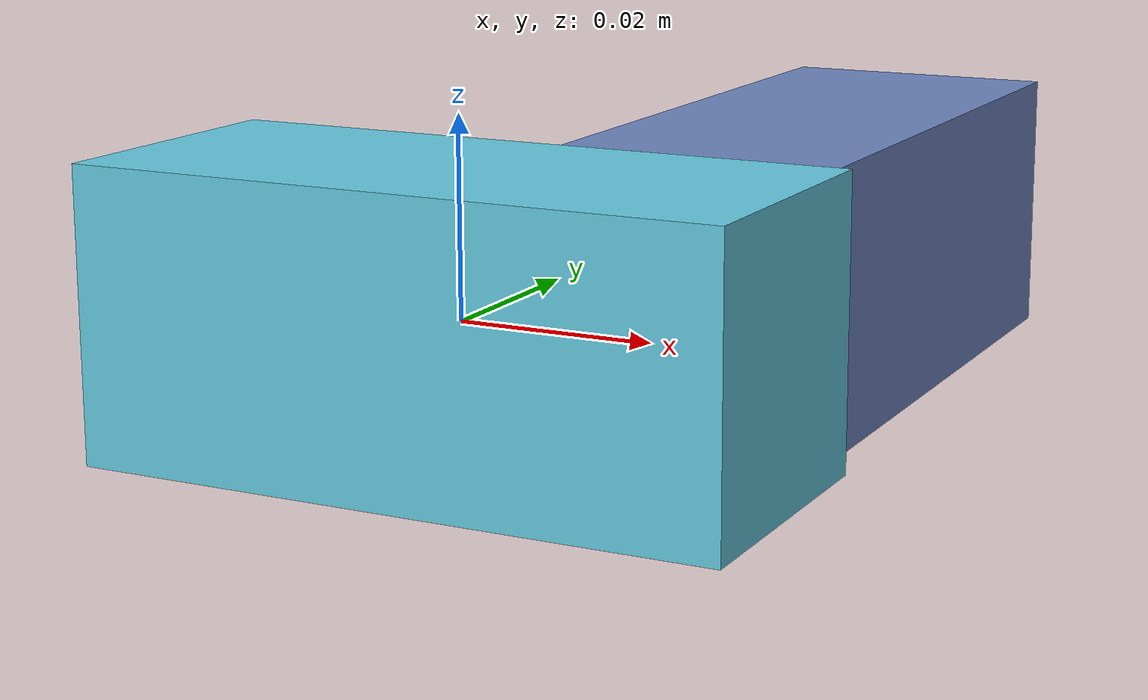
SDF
<sdf version="1.4"><world name="default"><model name="object0"><link name="link1"><pose>0 0 0 0 0 0</pose><inertial><pose>0 0 0 0 0 0</pose><mass>0.03646420190187355</mass><inertia><ixx>5.469630285281032e-06</ixx><ixy>0</ixy><iyy>1.659060767524998e-05</iyy><ixz>0</ixz><iyz>0</iyz><izz>1.659060767524998e-05</izz></inertia></inertial><visual name="link1_visual"><pose>0 0  0 0 0 0</pose><geometry><box><size>0.06752629981828435 0.03 0.03</size></box></geometry><material><diffuse>0.3938539411154311 0.7965264777678237 0.8848959858277219 1</diffuse></material></visual><collision><pose>0 0  0 0 0 0</pose><geometry><box><size>0.06752629981828435 0.03 0.03</size></box></geometry></collision></link><link name="link2"><pose>0.01663417864760216 0.04814421797369722 0 0 0 0</pose><inertial><pose>0 0 0 0 0 0</pose><mass>0.03785686268716196</mass><inertia><ixx>1.815789675595787e-05</ixx><ixy>0</ixy><iyy>5.492399828195747e-06</iyy><ixz>0</ixz><iyz>0</iyz><izz>1.834402633083642e-05</izz></inertia></inertial><visual name="link2_visual"><pose>0 0  0 0 0 0</pose><geometry><box><size>0.03 0.07010530127252215 0.028999999999999998</size></box></geometry><material><diffuse>0.4285312988546235 0.5307621336680334 0.7559151436176212 1</diffuse></material></visual><collision><pose>0 0  0 0 0 0</pose><geometry><box><size>0.03 0.07010530127252215 0.028999999999999998</size></box></geometry></collision></link><joint name="link_joint_0" type="fixed"><parent>link1</parent><child>link2</child><pose>0 0 0 0 0 0</pose><axis><xyz>0 0 1</xyz></axis></joint></model></world></sdf>
